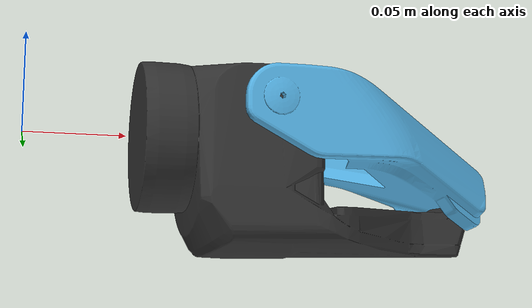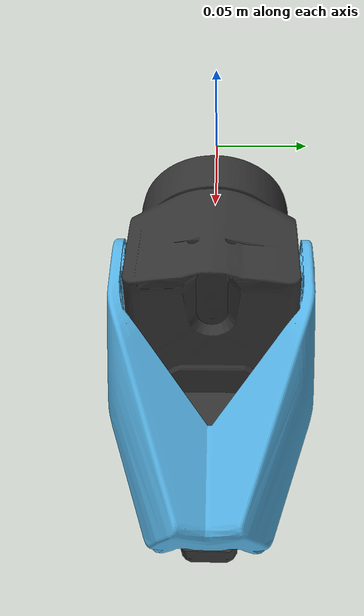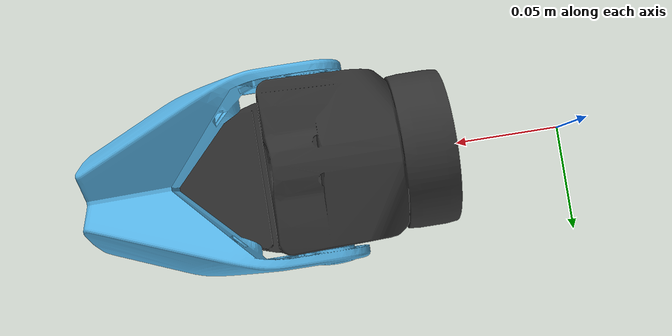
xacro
<?xml version="1.0"?>

<!-- Copyright (c) 2025 Robotics and AI Institute LLC dba RAI Institute. All rights reserved. -->

<robot name="standalone_gripper" xmlns:xacro="http://www.ros.org/wiki/xacro">

  <xacro:include filename="$(find spot_description)/urdf/spot_gripper_macro.urdf" />

  <!-- Root link -->

  <!-- Parameters -->
  <xacro:arg name="tf_prefix" default="" />
  <xacro:arg name="include_transmissions" default="false" />

  <!-- Load arm -->
  <xacro:load_gripper
    tf_prefix="$(arg tf_prefix)"
    include_transmissions="$(arg include_transmissions)" />

</robot>

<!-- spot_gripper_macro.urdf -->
<!-- Copyright (c) 2025 Robotics and AI Institute LLC dba RAI Institute. All rights reserved. -->

<robot name="spot_gripper" xmlns:xacro="http://www.ros.org/wiki/xacro">
  <xacro:macro name="load_gripper" params="
		tf_prefix
		include_transmissions:=false">

      <link name="${tf_prefix}arm_link_wr1">
        <visual>
          <origin xyz="0 0 0" rpy="0 0 0" />
          <geometry>
            <mesh filename="package://spot_description/meshes/arm/visual/arm_link_wr1.obj" />
          </geometry>
          <material name="arm_link_wr1">
            <color rgba="0.2 0.2 0.2 1" />
          </material>
        </visual>
        <collision>
          <geometry>
            <mesh filename="package://spot_description/meshes/arm/collision/arm_link_wr1.obj" />
          </geometry>
        </collision>
        <collision>
          <geometry>
            <mesh filename="package://spot_description/meshes/arm/collision/front_jaw.obj" />
          </geometry>
        </collision>
        <collision>
          <geometry>
            <mesh filename="package://spot_description/meshes/arm/collision/middle_jaw.obj" />
          </geometry>
        </collision>
        <collision>
          <geometry>
            <mesh filename="package://spot_description/meshes/arm/collision/jaw_tooth.obj" />
          </geometry>
        </collision>
        <inertial>
          <origin rpy="0.006393076449033863 0.2928526604761865 -0.022814984050994802"
            xyz="0.12516802549362183 0.00010137435310753062 -0.013997982256114483" />
          <mass value="0.785" />
          <inertia ixx="0.00076741362048185" ixy="0.0" ixz="0.0" iyy="0.0017628124054271809" iyz="0.0"
            izz="0.0016818105865345951" />
        </inertial>
      </link>

		<link name="${tf_prefix}arm_link_fngr">
			<visual>
				<origin xyz="0 0 0" rpy="0 0 0"/>
				<geometry>
					<mesh filename="package://spot_description/meshes/arm/visual/arm_link_fngr.obj"/>
				</geometry>
			</visual>
			<collision>
				<geometry>
					<mesh filename="package://spot_description/meshes/arm/collision/left_hinge.obj" />
				</geometry>
			</collision>
			<collision>
				<geometry>
					<mesh filename="package://spot_description/meshes/arm/collision/left_finger.obj" />
				</geometry>
			</collision>
			<collision>
				<geometry>
					<mesh filename="package://spot_description/meshes/arm/collision/left_tooth.obj" />
				</geometry>
			</collision>
			<collision>
				<geometry>
					<mesh filename="package://spot_description/meshes/arm/collision/right_hinge.obj" />
				</geometry>
			</collision>
			<collision>
				<geometry>
					<mesh filename="package://spot_description/meshes/arm/collision/right_finger.obj" />
				</geometry>
			</collision>
			<collision>
				<geometry>
					<mesh filename="package://spot_description/meshes/arm/collision/right_tooth.obj" />
				</geometry>
			</collision>
			<inertial>
				<origin xyz="0.03565178 0.00067200 -0.01227516"/>
				<inertia ixx="0.00025226" ixy="-0.00000536" ixz="-0.00015067" iyy="0.00048453" iyz="0.00000184" izz="0.00059145"/>
				<mass value="0.22383315"/>
			</inertial>
		</link>

		<joint name="${tf_prefix}arm_f1x" type="revolute">
			<origin xyz="0.11745 0.0 0.014820" rpy="0 0 0"/>
			<axis xyz="0.0 1.0 0.0"/>
			<parent link="arm_link_wr1"/>
			<child link="arm_link_fngr"/>
			<!-- The velocity limits are for kinematic planning. The motors might move faster. -->
			<limit effort="15.32" lower="-1.5708" upper="0.0" velocity="10"/>
		</joint>

		<xacro:if value="${include_transmissions}">
			<transmission name="${tf_prefix}arm_f1x_tran">
				<type>transmission_interface/SimpleTransmission</type>
				<joint name="${tf_prefix}arm_f1x">
					<hardwareInterface>EffortJointInterface</hardwareInterface>
				</joint>
				<actuator name="${tf_prefix}arm_f1x_motor">
					<hardwareInterface>EffortJointInterface</hardwareInterface>
				</actuator>
			</transmission>
		</xacro:if>

		<link name="${tf_prefix}arm_link_jaw">
			<collision>
				<geometry>
					<mesh filename="package://spot_description/meshes/arm/collision/front_jaw.obj" />
				</geometry>
			</collision>
			<collision>
				<geometry>
					<mesh filename="package://spot_description/meshes/arm/collision/middle_jaw.obj" />
				 </geometry>
			</collision>
			<collision>
				<geometry>
					<mesh filename="package://spot_description/meshes/arm/collision/jaw_tooth.obj" />
				 </geometry>
			</collision>
		</link>
		<joint name="${tf_prefix}arm_jaw" type="fixed">
			<parent link="arm_link_wr1"/>
			<child link="arm_link_jaw"/>
		</joint>
  </xacro:macro>
</robot>
